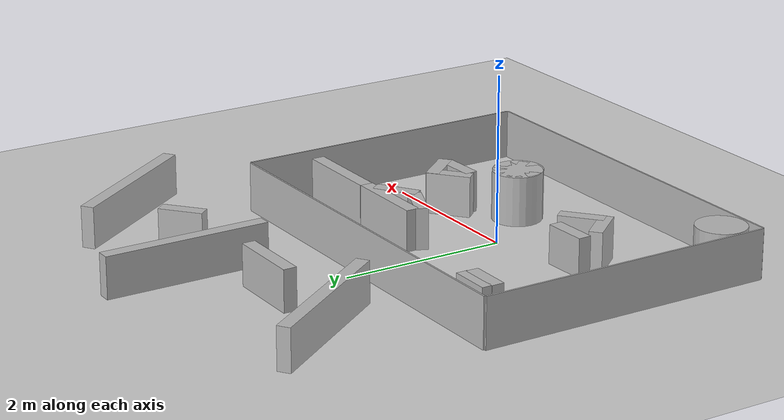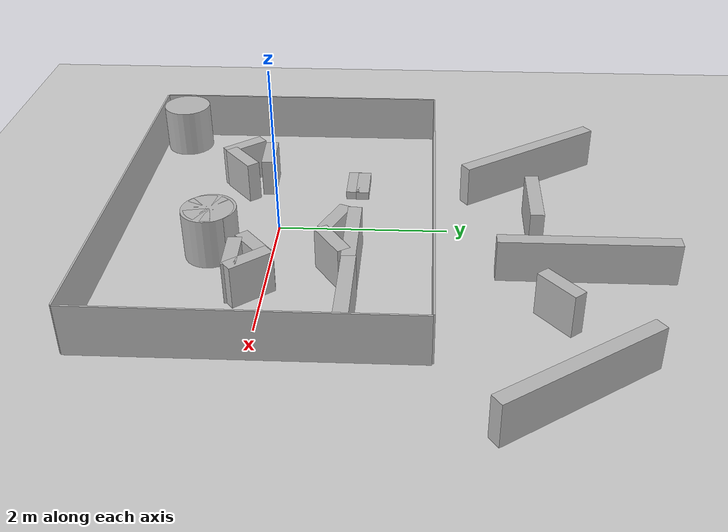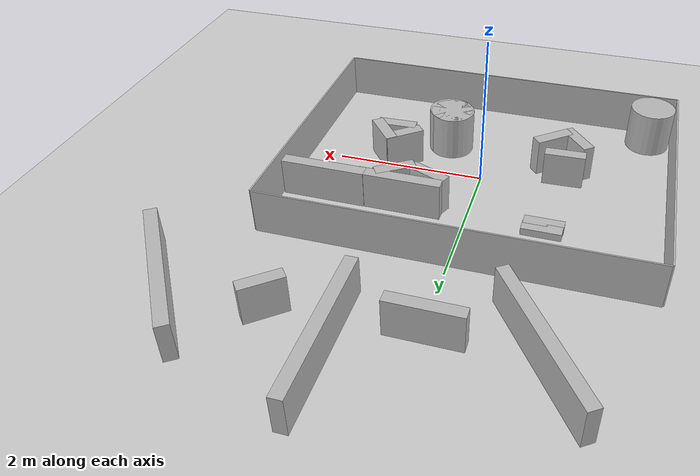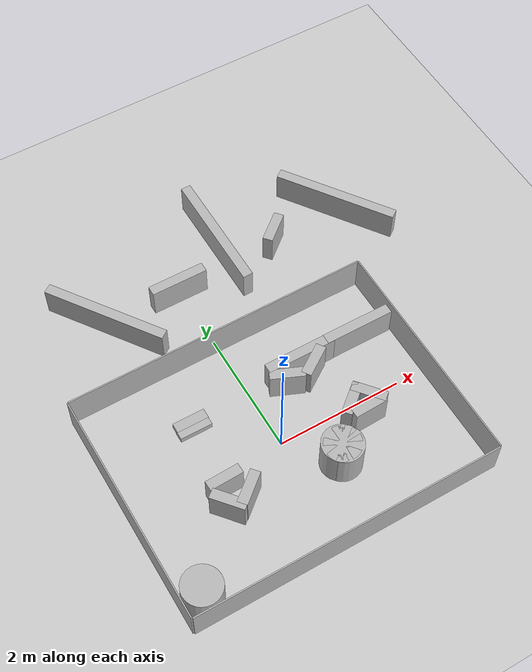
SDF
<sdf version="1.6">
 <world name="default">
  <light name="sun" type="directional">
   <pose>0 0 10 0 -0 0</pose>
   <diffuse>0.8 0.8 0.8 1</diffuse>
   <specular>0.2 0.2 0.2 1</specular>
   <attenuation>
    <range>1000</range>
    <constant>0.9</constant>
    <linear>0.01</linear>
    <quadratic>0.001</quadratic>
   </attenuation>
   <direction>-0.5 0.1 -0.9</direction>
  </light>
  <model name="ground_plane">
   <static>1</static>
   <link name="link">
    <collision name="collision">
     <geometry><plane><normal>0 0 1</normal><size>100 100</size></plane></geometry>
     <surface><friction><ode><mu>100</mu><mu2>50</mu2></ode></friction></surface>
    </collision>
    <visual name="visual">
     <cast_shadows>0</cast_shadows>
     <geometry><plane><normal>0 0 1</normal><size>100 100</size></plane></geometry>
     <material>
      <script><uri>file://media/materials/scripts/gazebo.material</uri><name>Gazebo/Grey</name></script>
     </material>
    </visual>
   </link>
  </model>
  <gravity>0 0 -9.8</gravity>
  <magnetic_field>6e-06 2.3e-05 -4.2e-05</magnetic_field>
  <atmosphere type="adiabatic"/>
  <physics name="default_physics" default="0" type="ode">
   <max_step_size>0.001</max_step_size>
   <real_time_factor>1</real_time_factor>
   <real_time_update_rate>1000</real_time_update_rate>
  </physics>
  <scene><ambient>0.4 0.4 0.4 1</ambient><background>0.7 0.7 0.7 1</background><shadows>1</shadows></scene>
  <spherical_coordinates>
   <surface_model>EARTH_WGS84</surface_model>
   <latitude_deg>0</latitude_deg>
   <longitude_deg>0</longitude_deg>
   <elevation>0</elevation>
   <heading_deg>0</heading_deg>
  </spherical_coordinates>
  <model name="border_Top">
   <pose>1e-06 1.84001 0.3 -1.4e-05 -0 -4e-06</pose>
   <static>1</static>
   <link name="link">
    <collision name="collision">
     <geometry><box><size>4.88 0.02 0.6</size></box></geometry>
     <surface><friction><ode><mu>0.01</mu><mu2>0.01</mu2></ode></friction></surface>
    </collision>
    <visual name="visual"><geometry><box><size>4.88 0.02 0.6</size></box></geometry></visual>
    <inertial>
     <inertia><ixx>1</ixx><ixy>0</ixy><ixz>0</ixz><iyy>1</iyy><iyz>0</iyz><izz>1</izz></inertia>
     <mass>1</mass>
    </inertial>
   </link>
  </model>
  <model name="border_Bot">
   <static>1</static>
   <pose>-9e-06 -1.84002 0.3 1e-05 -0 2e-06</pose>
   <link name="link">
    <collision name="collision">
     <geometry><box><size>4.88 0.02 0.6</size></box></geometry>
     <surface><friction><ode><mu>0.01</mu><mu2>0.01</mu2></ode></friction></surface>
    </collision>
    <visual name="visual"><geometry><box><size>4.88 0.02 0.6</size></box></geometry></visual>
    <inertial>
     <inertia><ixx>1</ixx><ixy>0</ixy><ixz>0</ixz><iyy>1</iyy><iyz>0</iyz><izz>1</izz></inertia>
     <mass>1</mass>
    </inertial>
   </link>
  </model>
  <model name="border_Left">
   <static>1</static>
   <pose>-2.45001 5e-06 0.3 0 7e-06 0</pose>
   <link name="link">
    <collision name="collision">
     <geometry><box><size>0.02 3.66 0.6</size></box></geometry>
     <surface><friction><ode><mu>0.01</mu><mu2>0.01</mu2></ode></friction></surface>
    </collision>
    <visual name="visual"><geometry><box><size>0.02 3.66 0.6</size></box></geometry></visual>
    <inertial>
     <inertia><ixx>1</ixx><ixy>0</ixy><ixz>0</ixz><iyy>1</iyy><iyz>0</iyz><izz>1</izz></inertia>
     <mass>1</mass>
    </inertial>
   </link>
  </model>
  <model name="border_Right">
   <static>1</static>
   <pose>2.45 -2e-06 0.3 0 -8e-06 -1e-06</pose>
   <link name="link">
    <collision name="collision">
     <geometry><box><size>0.02 3.66 0.6</size></box></geometry>
     <surface><friction><ode><mu>0.01</mu><mu2>0.01</mu2></ode></friction></surface>
    </collision>
    <visual name="visual"><geometry><box><size>0.02 3.66 0.6</size></box></geometry></visual>
    <inertial>
     <inertia><ixx>1</ixx><ixy>0</ixy><ixz>0</ixz><iyy>1</iyy><iyz>0</iyz><izz>1</izz></inertia>
     <mass>1</mass>
    </inertial>
   </link>
  </model>
  <model name="cylinder_1">
   <pose>-2.12191 -1.51039 0.3 0 -0 0</pose>
   <static>1</static>
   <link name="link">
    <collision name="collision">
     <geometry><cylinder><radius>0.3</radius><length>0.6</length></cylinder></geometry>
    </collision>
    <visual name="visual">
     <geometry><cylinder><radius>0.3</radius><length>0.6</length></cylinder></geometry>
    </visual>
   </link>
  </model>
  <model name="box_1_clone_clone_1">
   <static>1</static>
   <pose>1.86879 0.936513 0.250001 -3e-06 -0 -1.57648</pose>
   <link name="link">
    <collision name="collision">
     <geometry><box><size>0.16 1.10724 0.5</size></box></geometry>
     <surface><friction><ode><mu>0.01</mu><mu2>0.01</mu2></ode></friction></surface>
    </collision>
    <visual name="visual"><geometry><box><size>0.16 1.10724 0.5</size></box></geometry></visual>
    <inertial>
     <inertia><ixx>1</ixx><ixy>0</ixy><ixz>0</ixz><iyy>1</iyy><iyz>0</iyz><izz>1</izz></inertia>
     <mass>1</mass>
    </inertial>
   </link>
  </model>
  <model name="box_1_clone_clone_2">
   <static>1</static>
   <pose>0.868091 0.93709 0.250001 -3e-06 -0 -1.57648</pose>
   <link name="link">
    <collision name="collision">
     <geometry><box><size>0.16 1.10724 0.5</size></box></geometry>
     <surface><friction><ode><mu>0.01</mu><mu2>0.01</mu2></ode></friction></surface>
    </collision>
    <visual name="visual"><geometry><box><size>0.16 1.10724 0.5</size></box></geometry></visual>
    <inertial>
     <inertia><ixx>1</ixx><ixy>0</ixy><ixz>0</ixz><iyy>1</iyy><iyz>0</iyz><izz>1</izz></inertia>
     <mass>1</mass>
    </inertial>
   </link>
  </model>
  <model name="cylinder_1_clone_clone">
   <pose>0.567071 -0.672733 0.3 0 -0 0</pose>
   <static>1</static>
   <link name="link">
    <collision name="collision">
     <geometry><cylinder><radius>0.3</radius><length>0.6</length></cylinder></geometry>
    </collision>
    <visual name="visual">
     <geometry><cylinder><radius>0.3</radius><length>0.6</length></cylinder></geometry>
    </visual>
   </link>
  </model>
  <model name="cylinder_1_clone_clone_0">
   <pose>0.590598 -0.699438 0.3 0 -0 0</pose>
   <static>1</static>
   <link name="link">
    <collision name="collision">
     <geometry><cylinder><radius>0.3</radius><length>0.6</length></cylinder></geometry>
    </collision>
    <visual name="visual">
     <geometry><cylinder><radius>0.3</radius><length>0.6</length></cylinder></geometry>
    </visual>
   </link>
  </model>
  <model name="box_1_clone_clone_clone">
   <static>1</static>
   <pose>-0.05091 3.00479 0.250001 -3e-06 -0 -1.57648</pose>
   <link name="link">
    <collision name="collision">
     <geometry><box><size>0.16 0.911019 0.5</size></box></geometry>
     <surface><friction><ode><mu>0.01</mu><mu2>0.01</mu2></ode></friction></surface>
    </collision>
    <visual name="visual"><geometry><box><size>0.16 0.911019 0.5</size></box></geometry></visual>
    <inertial>
     <inertia><ixx>1</ixx><ixy>0</ixy><ixz>0</ixz><iyy>1</iyy><iyz>0</iyz><izz>1</izz></inertia>
     <mass>1</mass>
    </inertial>
   </link>
  </model>
  <model name="box_1_clone_1">
   <static>1</static>
   <pose>0.90792 3.51464 0.250001 0 3e-06 3e-06</pose>
   <link name="link">
    <collision name="collision">
     <geometry><box><size>0.16 1.9931 0.5</size></box></geometry>
     <surface><friction><ode><mu>0.01</mu><mu2>0.01</mu2></ode></friction></surface>
    </collision>
    <visual name="visual"><geometry><box><size>0.16 1.9931 0.5</size></box></geometry></visual>
    <inertial>
     <inertia><ixx>1</ixx><ixy>0</ixy><ixz>0</ixz><iyy>1</iyy><iyz>0</iyz><izz>1</izz></inertia>
     <mass>1</mass>
    </inertial>
   </link>
  </model>
  <model name="box_1_clone_0_clone">
   <static>1</static>
   <pose>-1.26493 3.03476 0.250001 2e-06 2e-06 0.610542</pose>
   <link name="link">
    <collision name="collision">
     <geometry><box><size>0.16 1.9931 0.5</size></box></geometry>
     <surface><friction><ode><mu>0.01</mu><mu2>0.01</mu2></ode></friction></surface>
    </collision>
    <visual name="visual"><geometry><box><size>0.16 1.9931 0.5</size></box></geometry></visual>
    <inertial>
     <inertia><ixx>1</ixx><ixy>0</ixy><ixz>0</ixz><iyy>1</iyy><iyz>0</iyz><izz>1</izz></inertia>
     <mass>1</mass>
    </inertial>
   </link>
  </model>
  <model name="box_1_clone_clone_0_clone">
   <static>1</static>
   <pose>1.11981 -0.095186 0.250001 -2e-06 2e-06 -0.874475</pose>
   <link name="link">
    <collision name="collision">
     <geometry><box><size>0.16 0.533452 0.5</size></box></geometry>
     <surface><friction><ode><mu>0.01</mu><mu2>0.01</mu2></ode></friction></surface>
    </collision>
    <visual name="visual"><geometry><box><size>0.16 0.533452 0.5</size></box></geometry></visual>
    <inertial>
     <inertia><ixx>1</ixx><ixy>0</ixy><ixz>0</ixz><iyy>1</iyy><iyz>0</iyz><izz>1</izz></inertia>
     <mass>1</mass>
    </inertial>
   </link>
  </model>
  <model name="box_1_clone_clone_0_clone_0">
   <static>1</static>
   <pose>1.71417 3.12443 0.250001 -2e-06 2e-06 -0.874475</pose>
   <link name="link">
    <collision name="collision">
     <geometry><box><size>0.16 0.533452 0.5</size></box></geometry>
     <surface><friction><ode><mu>0.01</mu><mu2>0.01</mu2></ode></friction></surface>
    </collision>
    <visual name="visual"><geometry><box><size>0.16 0.533452 0.5</size></box></geometry></visual>
    <inertial>
     <inertia><ixx>1</ixx><ixy>0</ixy><ixz>0</ixz><iyy>1</iyy><iyz>0</iyz><izz>1</izz></inertia>
     <mass>1</mass>
    </inertial>
   </link>
  </model>
  <model name="box_1_clone_0_clone_0">
   <static>1</static>
   <pose>2.91594 3.19004 0.250001 2e-06 2e-06 0.610542</pose>
   <link name="link">
    <collision name="collision">
     <geometry><box><size>0.16 1.9931 0.5</size></box></geometry>
     <surface><friction><ode><mu>0.01</mu><mu2>0.01</mu2></ode></friction></surface>
    </collision>
    <visual name="visual"><geometry><box><size>0.16 1.9931 0.5</size></box></geometry></visual>
    <inertial>
     <inertia><ixx>1</ixx><ixy>0</ixy><ixz>0</ixz><iyy>1</iyy><iyz>0</iyz><izz>1</izz></inertia>
     <mass>1</mass>
    </inertial>
   </link>
  </model>
  <model name="box_1_clone_clone_0_clone_clone_clone">
   <static>1</static>
   <pose>1.39349 -0.12005 0.250001 -2e-06 -2e-06 -2.44998</pose>
   <link name="link">
    <collision name="collision">
     <geometry><box><size>0.16 0.533452 0.5</size></box></geometry>
     <surface><friction><ode><mu>0.01</mu><mu2>0.01</mu2></ode></friction></surface>
    </collision>
    <visual name="visual"><geometry><box><size>0.16 0.533452 0.5</size></box></geometry></visual>
    <inertial>
     <inertia><ixx>1</ixx><ixy>0</ixy><ixz>0</ixz><iyy>1</iyy><iyz>0</iyz><izz>1</izz></inertia>
     <mass>1</mass>
    </inertial>
   </link>
  </model>
  <model name="box_1_clone_clone_0_clone_clone_clone_0">
   <static>1</static>
   <pose>1.26897 -0.308958 0.250001 -3e-06 -0 -1.53707</pose>
   <link name="link">
    <collision name="collision">
     <geometry><box><size>0.16 0.533452 0.5</size></box></geometry>
     <surface><friction><ode><mu>0.01</mu><mu2>0.01</mu2></ode></friction></surface>
    </collision>
    <visual name="visual"><geometry><box><size>0.16 0.533452 0.5</size></box></geometry></visual>
    <inertial>
     <inertia><ixx>1</ixx><ixy>0</ixy><ixz>0</ixz><iyy>1</iyy><iyz>0</iyz><izz>1</izz></inertia>
     <mass>1</mass>
    </inertial>
   </link>
  </model>
  <model name="box_1_clone_clone_0_clone_clone">
   <static>1</static>
   <pose>-0.859642 -0.554316 0.250001 -2e-06 2e-06 -0.874475</pose>
   <link name="link">
    <collision name="collision">
     <geometry><box><size>0.16 0.533452 0.5</size></box></geometry>
     <surface><friction><ode><mu>0.01</mu><mu2>0.01</mu2></ode></friction></surface>
    </collision>
    <visual name="visual"><geometry><box><size>0.16 0.533452 0.5</size></box></geometry></visual>
    <inertial>
     <inertia><ixx>1</ixx><ixy>0</ixy><ixz>0</ixz><iyy>1</iyy><iyz>0</iyz><izz>1</izz></inertia>
     <mass>1</mass>
    </inertial>
   </link>
  </model>
  <model name="box_1_clone_clone_0_clone_clone_clone_0_clone">
   <static>1</static>
   <pose>-1.07011 -0.236626 0.207472 -3e-06 -0 -1.53707</pose>
   <link name="link">
    <collision name="collision">
     <geometry><box><size>0.16 0.533452 0.5</size></box></geometry>
     <surface><friction><ode><mu>0.01</mu><mu2>0.01</mu2></ode></friction></surface>
    </collision>
    <visual name="visual"><geometry><box><size>0.16 0.533452 0.5</size></box></geometry></visual>
    <inertial>
     <inertia><ixx>1</ixx><ixy>0</ixy><ixz>0</ixz><iyy>1</iyy><iyz>0</iyz><izz>1</izz></inertia>
     <mass>1</mass>
    </inertial>
   </link>
  </model>
  <model name="box_1_clone_clone_0_clone_clone_clone_clone">
   <static>1</static>
   <pose>-1.19003 -0.575949 0.250001 -2e-06 -2e-06 -2.44998</pose>
   <link name="link">
    <collision name="collision">
     <geometry><box><size>0.16 0.533452 0.5</size></box></geometry>
     <surface><friction><ode><mu>0.01</mu><mu2>0.01</mu2></ode></friction></surface>
    </collision>
    <visual name="visual"><geometry><box><size>0.16 0.533452 0.5</size></box></geometry></visual>
    <inertial>
     <inertia><ixx>1</ixx><ixy>0</ixy><ixz>0</ixz><iyy>1</iyy><iyz>0</iyz><izz>1</izz></inertia>
     <mass>1</mass>
    </inertial>
   </link>
  </model>
  <model name="box_1_clone_clone_0_clone_clone_clone_clone_0">
   <static>1</static>
   <pose>0.531203 0.730148 0.250001 -3e-06 -1e-06 -1.98004</pose>
   <link name="link">
    <collision name="collision">
     <geometry><box><size>0.16 0.533452 0.5</size></box></geometry>
     <surface><friction><ode><mu>0.01</mu><mu2>0.01</mu2></ode></friction></surface>
    </collision>
    <visual name="visual"><geometry><box><size>0.16 0.533452 0.5</size></box></geometry></visual>
    <inertial>
     <inertia><ixx>1</ixx><ixy>0</ixy><ixz>0</ixz><iyy>1</iyy><iyz>0</iyz><izz>1</izz></inertia>
     <mass>1</mass>
    </inertial>
   </link>
  </model>
  <model name="box_1_clone_clone_0_clone_clone_clone_clone_0_clone">
   <static>1</static>
   <pose>0.981732 0.734324 0.250001 -2e-06 2e-06 -0.977705</pose>
   <link name="link">
    <collision name="collision">
     <geometry><box><size>0.16 0.533452 0.5</size></box></geometry>
     <surface><friction><ode><mu>0.01</mu><mu2>0.01</mu2></ode></friction></surface>
    </collision>
    <visual name="visual"><geometry><box><size>0.16 0.533452 0.5</size></box></geometry></visual>
    <inertial>
     <inertia><ixx>1</ixx><ixy>0</ixy><ixz>0</ixz><iyy>1</iyy><iyz>0</iyz><izz>1</izz></inertia>
     <mass>1</mass>
    </inertial>
   </link>
  </model>
  <model name="box_1_clone_clone_clone_clone_clone">
   <link name="link">
    <inertial>
     <inertia><ixx>1</ixx><ixy>0</ixy><ixz>0</ixz><iyy>1</iyy><iyz>0</iyz><izz>1</izz></inertia>
     <mass>1</mass>
    </inertial>
    <visual name="visual">
     <geometry><box><size>0.16 0.511019 0.1</size></box></geometry>
     <material><shader type="pixel"><normal_map>__default__</normal_map></shader></material>
     <pose>0 0 -0.2 0 -0 0</pose>
    </visual>
    <collision name="collision">
     <pose>0 0 -0.2 0 -0 0</pose>
     <geometry><box><size>0.16 0.511019 0.1</size></box></geometry>
     <surface>
      <friction>
       <ode><mu>0.01</mu><mu2>0.01</mu2><fdir1>0 0 0</fdir1><slip1>0</slip1><slip2>0</slip2></ode>
       <torsional>
        <coefficient>1</coefficient>
        <patch_radius>0</patch_radius>
        <surface_radius>0</surface_radius>
        <use_patch_radius>1</use_patch_radius>
        <ode><slip>0</slip></ode>
       </torsional>
      </friction>
      <bounce><restitution_coefficient>0</restitution_coefficient><threshold>1e+06</threshold></bounce>
      <contact>
       <collide_without_contact>0</collide_without_contact>
       <collide_without_contact_bitmask>1</collide_without_contact_bitmask>
       <collide_bitmask>1</collide_bitmask>
       <ode>
        <soft_cfm>0</soft_cfm>
        <soft_erp>0.2</soft_erp>
        <kp>1e+13</kp>
        <kd>1</kd>
        <max_vel>0.01</max_vel>
        <min_depth>0</min_depth>
       </ode>
       <bullet>
        <split_impulse>1</split_impulse>
        <split_impulse_penetration_threshold>-0.01</split_impulse_penetration_threshold>
        <soft_cfm>0</soft_cfm>
        <soft_erp>0.2</soft_erp>
        <kp>1e+13</kp>
        <kd>1</kd>
       </bullet>
      </contact>
     </surface>
    </collision>
   </link>
   <static>1</static>
   <pose>-0.977901 0.832447 0.250001 -3e-06 -0 -1.57648</pose>
  </model>
  <model name="box_1_clone_clone_clone_clone">
   <link name="link">
    <inertial>
     <inertia><ixx>1</ixx><ixy>0</ixy><ixz>0</ixz><iyy>1</iyy><iyz>0</iyz><izz>1</izz></inertia>
     <mass>1</mass>
     <pose>0 0 -0.2 0 -0 0</pose>
    </inertial>
    <visual name="visual">
     <geometry><box><size>0.16 0.511019 0.1</size></box></geometry>
     <material><shader type="pixel"><normal_map>__default__</normal_map></shader></material>
     <pose>0 0 -0.2 0 -0 0</pose>
    </visual>
    <collision name="collision">
     <pose>0 0 -0.2 0 -0 0</pose>
     <geometry><box><size>0.16 0.511019 0.1</size></box></geometry>
     <surface>
      <friction>
       <ode><mu>0.01</mu><mu2>0.01</mu2><fdir1>0 0 0</fdir1><slip1>0</slip1><slip2>0</slip2></ode>
       <torsional>
        <coefficient>1</coefficient>
        <patch_radius>0</patch_radius>
        <surface_radius>0</surface_radius>
        <use_patch_radius>1</use_patch_radius>
        <ode><slip>0</slip></ode>
       </torsional>
      </friction>
      <bounce><restitution_coefficient>0</restitution_coefficient><threshold>1e+06</threshold></bounce>
      <contact>
       <collide_without_contact>0</collide_without_contact>
       <collide_without_contact_bitmask>1</collide_without_contact_bitmask>
       <collide_bitmask>1</collide_bitmask>
       <ode>
        <soft_cfm>0</soft_cfm>
        <soft_erp>0.2</soft_erp>
        <kp>1e+13</kp>
        <kd>1</kd>
        <max_vel>0.01</max_vel>
        <min_depth>0</min_depth>
       </ode>
       <bullet>
        <split_impulse>1</split_impulse>
        <split_impulse_penetration_threshold>-0.01</split_impulse_penetration_threshold>
        <soft_cfm>0</soft_cfm>
        <soft_erp>0.2</soft_erp>
        <kp>1e+13</kp>
        <kd>1</kd>
       </bullet>
      </contact>
     </surface>
    </collision>
   </link>
   <static>1</static>
   <pose>-0.970137 0.953163 0.250001 -3e-06 -0 -1.57648</pose>
  </model>
 </world>
</sdf>
